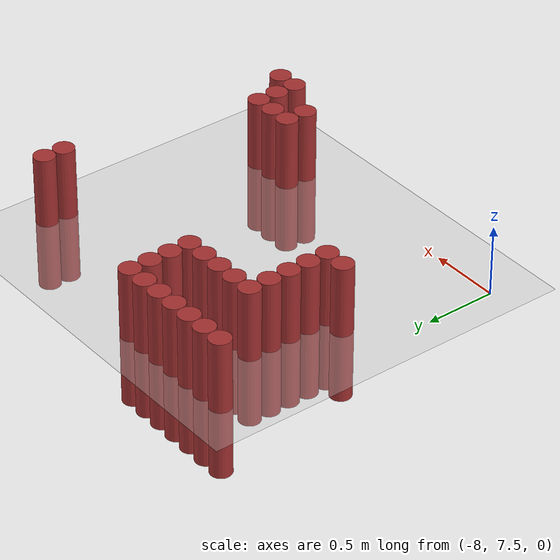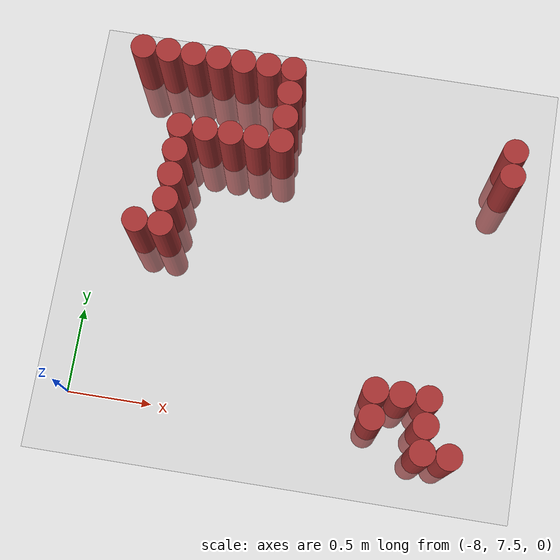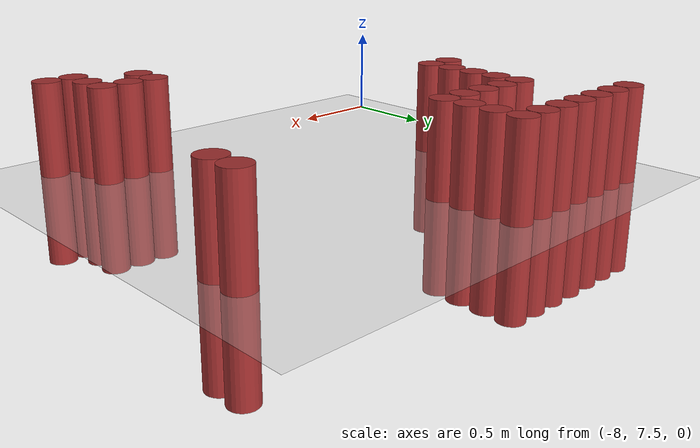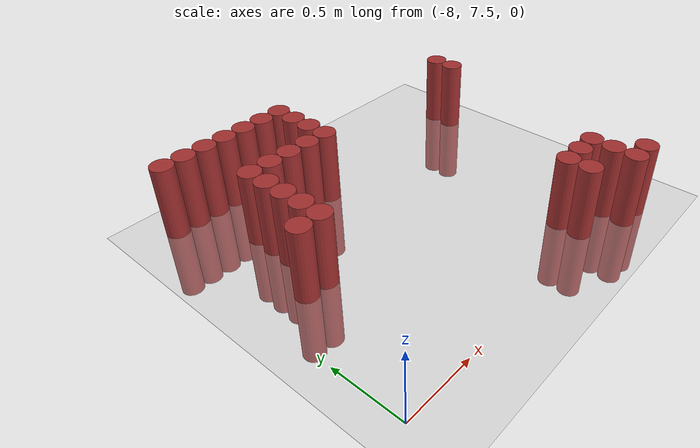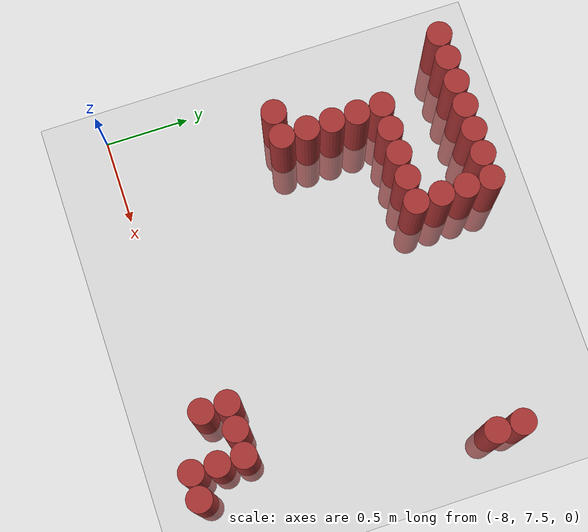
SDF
<sdf version="1.6">
 <world name="default">
  <model name="ground_plane">
   <static>1</static>
   <link name="link">
    <collision name="collision">
     <geometry><plane><normal>0 0 1</normal><size>100 100</size></plane></geometry>
     <surface><friction><ode><mu>100</mu><mu2>50</mu2></ode></friction></surface>
    </collision>
    <visual name="visual">
     <cast_shadows>0</cast_shadows>
     <geometry><plane><normal>0 0 1</normal><size>100 100</size></plane></geometry>
     <material>
      <script><uri>file://media/materials/scripts/gazebo.material</uri><name>Gazebo/Grey</name></script>
     </material>
    </visual>
   </link>
  </model>
  <model name="unit_cylinder_189">
   <static>1</static>
   <pose>-7.875000 9.525000 0.000000 0.000000 0.000000 0.000000</pose>
   <link name="link">
    <inertial>
     <mass>1</mass>
     <inertia><ixx>0.145833</ixx><ixy>0</ixy><ixz>0</ixz><iyy>0.145833</iyy><iyz>0</iyz><izz>0.125</izz></inertia>
    </inertial>
    <collision name="collision">
     <geometry><cylinder><radius>0.075000</radius><length>1</length></cylinder></geometry>
    </collision>
    <visual name="visual">
     <geometry><cylinder><radius>0.075000</radius><length>1</length></cylinder></geometry>
     <material>
      <ambient>0.648000 0.192000 0.192000 1</ambient>
      <diffuse>0.648000 0.192000 0.192000 1</diffuse>
     </material>
     <material>
      <script><name>Gazebo/Grey</name><uri>file://media/materials/scripts/gazebo.material</uri></script>
     </material>
    </visual>
   </link>
  </model>
  <model name="unit_cylinder_192">
   <static>1</static>
   <pose>-7.725000 8.475000 0.000000 0.000000 0.000000 0.000000</pose>
   <link name="link">
    <inertial>
     <mass>1</mass>
     <inertia><ixx>0.145833</ixx><ixy>0</ixy><ixz>0</ixz><iyy>0.145833</iyy><iyz>0</iyz><izz>0.125</izz></inertia>
    </inertial>
    <collision name="collision">
     <geometry><cylinder><radius>0.075000</radius><length>1</length></cylinder></geometry>
    </collision>
    <visual name="visual">
     <geometry><cylinder><radius>0.075000</radius><length>1</length></cylinder></geometry>
     <material>
      <ambient>0.648000 0.192000 0.192000 1</ambient>
      <diffuse>0.648000 0.192000 0.192000 1</diffuse>
     </material>
     <material>
      <script><name>Gazebo/Grey</name><uri>file://media/materials/scripts/gazebo.material</uri></script>
     </material>
    </visual>
   </link>
  </model>
  <model name="unit_cylinder_193">
   <static>1</static>
   <pose>-7.725000 9.525000 0.000000 0.000000 0.000000 0.000000</pose>
   <link name="link">
    <inertial>
     <mass>1</mass>
     <inertia><ixx>0.145833</ixx><ixy>0</ixy><ixz>0</ixz><iyy>0.145833</iyy><iyz>0</iyz><izz>0.125</izz></inertia>
    </inertial>
    <collision name="collision">
     <geometry><cylinder><radius>0.075000</radius><length>1</length></cylinder></geometry>
    </collision>
    <visual name="visual">
     <geometry><cylinder><radius>0.075000</radius><length>1</length></cylinder></geometry>
     <material>
      <ambient>0.648000 0.192000 0.192000 1</ambient>
      <diffuse>0.648000 0.192000 0.192000 1</diffuse>
     </material>
     <material>
      <script><name>Gazebo/Grey</name><uri>file://media/materials/scripts/gazebo.material</uri></script>
     </material>
    </visual>
   </link>
  </model>
  <model name="unit_cylinder_197">
   <static>1</static>
   <pose>-7.575000 8.475000 0.000000 0.000000 0.000000 0.000000</pose>
   <link name="link">
    <inertial>
     <mass>1</mass>
     <inertia><ixx>0.145833</ixx><ixy>0</ixy><ixz>0</ixz><iyy>0.145833</iyy><iyz>0</iyz><izz>0.125</izz></inertia>
    </inertial>
    <collision name="collision">
     <geometry><cylinder><radius>0.075000</radius><length>1</length></cylinder></geometry>
    </collision>
    <visual name="visual">
     <geometry><cylinder><radius>0.075000</radius><length>1</length></cylinder></geometry>
     <material>
      <ambient>0.648000 0.192000 0.192000 1</ambient>
      <diffuse>0.648000 0.192000 0.192000 1</diffuse>
     </material>
     <material>
      <script><name>Gazebo/Grey</name><uri>file://media/materials/scripts/gazebo.material</uri></script>
     </material>
    </visual>
   </link>
  </model>
  <model name="unit_cylinder_198">
   <static>1</static>
   <pose>-7.575000 8.625000 0.000000 0.000000 0.000000 0.000000</pose>
   <link name="link">
    <inertial>
     <mass>1</mass>
     <inertia><ixx>0.145833</ixx><ixy>0</ixy><ixz>0</ixz><iyy>0.145833</iyy><iyz>0</iyz><izz>0.125</izz></inertia>
    </inertial>
    <collision name="collision">
     <geometry><cylinder><radius>0.075000</radius><length>1</length></cylinder></geometry>
    </collision>
    <visual name="visual">
     <geometry><cylinder><radius>0.075000</radius><length>1</length></cylinder></geometry>
     <material>
      <ambient>0.648000 0.192000 0.192000 1</ambient>
      <diffuse>0.648000 0.192000 0.192000 1</diffuse>
     </material>
     <material>
      <script><name>Gazebo/Grey</name><uri>file://media/materials/scripts/gazebo.material</uri></script>
     </material>
    </visual>
   </link>
  </model>
  <model name="unit_cylinder_199">
   <static>1</static>
   <pose>-7.575000 8.775000 0.000000 0.000000 0.000000 0.000000</pose>
   <link name="link">
    <inertial>
     <mass>1</mass>
     <inertia><ixx>0.145833</ixx><ixy>0</ixy><ixz>0</ixz><iyy>0.145833</iyy><iyz>0</iyz><izz>0.125</izz></inertia>
    </inertial>
    <collision name="collision">
     <geometry><cylinder><radius>0.075000</radius><length>1</length></cylinder></geometry>
    </collision>
    <visual name="visual">
     <geometry><cylinder><radius>0.075000</radius><length>1</length></cylinder></geometry>
     <material>
      <ambient>0.648000 0.192000 0.192000 1</ambient>
      <diffuse>0.648000 0.192000 0.192000 1</diffuse>
     </material>
     <material>
      <script><name>Gazebo/Grey</name><uri>file://media/materials/scripts/gazebo.material</uri></script>
     </material>
    </visual>
   </link>
  </model>
  <model name="unit_cylinder_200">
   <static>1</static>
   <pose>-7.575000 8.925000 0.000000 0.000000 0.000000 0.000000</pose>
   <link name="link">
    <inertial>
     <mass>1</mass>
     <inertia><ixx>0.145833</ixx><ixy>0</ixy><ixz>0</ixz><iyy>0.145833</iyy><iyz>0</iyz><izz>0.125</izz></inertia>
    </inertial>
    <collision name="collision">
     <geometry><cylinder><radius>0.075000</radius><length>1</length></cylinder></geometry>
    </collision>
    <visual name="visual">
     <geometry><cylinder><radius>0.075000</radius><length>1</length></cylinder></geometry>
     <material>
      <ambient>0.648000 0.192000 0.192000 1</ambient>
      <diffuse>0.648000 0.192000 0.192000 1</diffuse>
     </material>
     <material>
      <script><name>Gazebo/Grey</name><uri>file://media/materials/scripts/gazebo.material</uri></script>
     </material>
    </visual>
   </link>
  </model>
  <model name="unit_cylinder_201">
   <static>1</static>
   <pose>-7.575000 9.075000 0.000000 0.000000 0.000000 0.000000</pose>
   <link name="link">
    <inertial>
     <mass>1</mass>
     <inertia><ixx>0.145833</ixx><ixy>0</ixy><ixz>0</ixz><iyy>0.145833</iyy><iyz>0</iyz><izz>0.125</izz></inertia>
    </inertial>
    <collision name="collision">
     <geometry><cylinder><radius>0.075000</radius><length>1</length></cylinder></geometry>
    </collision>
    <visual name="visual">
     <geometry><cylinder><radius>0.075000</radius><length>1</length></cylinder></geometry>
     <material>
      <ambient>0.648000 0.192000 0.192000 1</ambient>
      <diffuse>0.648000 0.192000 0.192000 1</diffuse>
     </material>
     <material>
      <script><name>Gazebo/Grey</name><uri>file://media/materials/scripts/gazebo.material</uri></script>
     </material>
    </visual>
   </link>
  </model>
  <model name="unit_cylinder_202">
   <static>1</static>
   <pose>-7.575000 9.525000 0.000000 0.000000 0.000000 0.000000</pose>
   <link name="link">
    <inertial>
     <mass>1</mass>
     <inertia><ixx>0.145833</ixx><ixy>0</ixy><ixz>0</ixz><iyy>0.145833</iyy><iyz>0</iyz><izz>0.125</izz></inertia>
    </inertial>
    <collision name="collision">
     <geometry><cylinder><radius>0.075000</radius><length>1</length></cylinder></geometry>
    </collision>
    <visual name="visual">
     <geometry><cylinder><radius>0.075000</radius><length>1</length></cylinder></geometry>
     <material>
      <ambient>0.648000 0.192000 0.192000 1</ambient>
      <diffuse>0.648000 0.192000 0.192000 1</diffuse>
     </material>
     <material>
      <script><name>Gazebo/Grey</name><uri>file://media/materials/scripts/gazebo.material</uri></script>
     </material>
    </visual>
   </link>
  </model>
  <model name="unit_cylinder_203">
   <static>1</static>
   <pose>-7.425000 9.075000 0.000000 0.000000 0.000000 0.000000</pose>
   <link name="link">
    <inertial>
     <mass>1</mass>
     <inertia><ixx>0.145833</ixx><ixy>0</ixy><ixz>0</ixz><iyy>0.145833</iyy><iyz>0</iyz><izz>0.125</izz></inertia>
    </inertial>
    <collision name="collision">
     <geometry><cylinder><radius>0.075000</radius><length>1</length></cylinder></geometry>
    </collision>
    <visual name="visual">
     <geometry><cylinder><radius>0.075000</radius><length>1</length></cylinder></geometry>
     <material>
      <ambient>0.648000 0.192000 0.192000 1</ambient>
      <diffuse>0.648000 0.192000 0.192000 1</diffuse>
     </material>
     <material>
      <script><name>Gazebo/Grey</name><uri>file://media/materials/scripts/gazebo.material</uri></script>
     </material>
    </visual>
   </link>
  </model>
  <model name="unit_cylinder_204">
   <static>1</static>
   <pose>-7.425000 9.525000 0.000000 0.000000 0.000000 0.000000</pose>
   <link name="link">
    <inertial>
     <mass>1</mass>
     <inertia><ixx>0.145833</ixx><ixy>0</ixy><ixz>0</ixz><iyy>0.145833</iyy><iyz>0</iyz><izz>0.125</izz></inertia>
    </inertial>
    <collision name="collision">
     <geometry><cylinder><radius>0.075000</radius><length>1</length></cylinder></geometry>
    </collision>
    <visual name="visual">
     <geometry><cylinder><radius>0.075000</radius><length>1</length></cylinder></geometry>
     <material>
      <ambient>0.648000 0.192000 0.192000 1</ambient>
      <diffuse>0.648000 0.192000 0.192000 1</diffuse>
     </material>
     <material>
      <script><name>Gazebo/Grey</name><uri>file://media/materials/scripts/gazebo.material</uri></script>
     </material>
    </visual>
   </link>
  </model>
  <model name="unit_cylinder_205">
   <static>1</static>
   <pose>-7.275000 9.075000 0.000000 0.000000 0.000000 0.000000</pose>
   <link name="link">
    <inertial>
     <mass>1</mass>
     <inertia><ixx>0.145833</ixx><ixy>0</ixy><ixz>0</ixz><iyy>0.145833</iyy><iyz>0</iyz><izz>0.125</izz></inertia>
    </inertial>
    <collision name="collision">
     <geometry><cylinder><radius>0.075000</radius><length>1</length></cylinder></geometry>
    </collision>
    <visual name="visual">
     <geometry><cylinder><radius>0.075000</radius><length>1</length></cylinder></geometry>
     <material>
      <ambient>0.648000 0.192000 0.192000 1</ambient>
      <diffuse>0.648000 0.192000 0.192000 1</diffuse>
     </material>
     <material>
      <script><name>Gazebo/Grey</name><uri>file://media/materials/scripts/gazebo.material</uri></script>
     </material>
    </visual>
   </link>
  </model>
  <model name="unit_cylinder_206">
   <static>1</static>
   <pose>-7.275000 9.525000 0.000000 0.000000 0.000000 0.000000</pose>
   <link name="link">
    <inertial>
     <mass>1</mass>
     <inertia><ixx>0.145833</ixx><ixy>0</ixy><ixz>0</ixz><iyy>0.145833</iyy><iyz>0</iyz><izz>0.125</izz></inertia>
    </inertial>
    <collision name="collision">
     <geometry><cylinder><radius>0.075000</radius><length>1</length></cylinder></geometry>
    </collision>
    <visual name="visual">
     <geometry><cylinder><radius>0.075000</radius><length>1</length></cylinder></geometry>
     <material>
      <ambient>0.648000 0.192000 0.192000 1</ambient>
      <diffuse>0.648000 0.192000 0.192000 1</diffuse>
     </material>
     <material>
      <script><name>Gazebo/Grey</name><uri>file://media/materials/scripts/gazebo.material</uri></script>
     </material>
    </visual>
   </link>
  </model>
  <model name="unit_cylinder_207">
   <static>1</static>
   <pose>-7.125000 9.075000 0.000000 0.000000 0.000000 0.000000</pose>
   <link name="link">
    <inertial>
     <mass>1</mass>
     <inertia><ixx>0.145833</ixx><ixy>0</ixy><ixz>0</ixz><iyy>0.145833</iyy><iyz>0</iyz><izz>0.125</izz></inertia>
    </inertial>
    <collision name="collision">
     <geometry><cylinder><radius>0.075000</radius><length>1</length></cylinder></geometry>
    </collision>
    <visual name="visual">
     <geometry><cylinder><radius>0.075000</radius><length>1</length></cylinder></geometry>
     <material>
      <ambient>0.648000 0.192000 0.192000 1</ambient>
      <diffuse>0.648000 0.192000 0.192000 1</diffuse>
     </material>
     <material>
      <script><name>Gazebo/Grey</name><uri>file://media/materials/scripts/gazebo.material</uri></script>
     </material>
    </visual>
   </link>
  </model>
  <model name="unit_cylinder_208">
   <static>1</static>
   <pose>-7.125000 9.525000 0.000000 0.000000 0.000000 0.000000</pose>
   <link name="link">
    <inertial>
     <mass>1</mass>
     <inertia><ixx>0.145833</ixx><ixy>0</ixy><ixz>0</ixz><iyy>0.145833</iyy><iyz>0</iyz><izz>0.125</izz></inertia>
    </inertial>
    <collision name="collision">
     <geometry><cylinder><radius>0.075000</radius><length>1</length></cylinder></geometry>
    </collision>
    <visual name="visual">
     <geometry><cylinder><radius>0.075000</radius><length>1</length></cylinder></geometry>
     <material>
      <ambient>0.648000 0.192000 0.192000 1</ambient>
      <diffuse>0.648000 0.192000 0.192000 1</diffuse>
     </material>
     <material>
      <script><name>Gazebo/Grey</name><uri>file://media/materials/scripts/gazebo.material</uri></script>
     </material>
    </visual>
   </link>
  </model>
  <model name="unit_cylinder_209">
   <static>1</static>
   <pose>-6.975000 9.075000 0.000000 0.000000 0.000000 0.000000</pose>
   <link name="link">
    <inertial>
     <mass>1</mass>
     <inertia><ixx>0.145833</ixx><ixy>0</ixy><ixz>0</ixz><iyy>0.145833</iyy><iyz>0</iyz><izz>0.125</izz></inertia>
    </inertial>
    <collision name="collision">
     <geometry><cylinder><radius>0.075000</radius><length>1</length></cylinder></geometry>
    </collision>
    <visual name="visual">
     <geometry><cylinder><radius>0.075000</radius><length>1</length></cylinder></geometry>
     <material>
      <ambient>0.648000 0.192000 0.192000 1</ambient>
      <diffuse>0.648000 0.192000 0.192000 1</diffuse>
     </material>
     <material>
      <script><name>Gazebo/Grey</name><uri>file://media/materials/scripts/gazebo.material</uri></script>
     </material>
    </visual>
   </link>
  </model>
  <model name="unit_cylinder_210">
   <static>1</static>
   <pose>-6.975000 9.225000 0.000000 0.000000 0.000000 0.000000</pose>
   <link name="link">
    <inertial>
     <mass>1</mass>
     <inertia><ixx>0.145833</ixx><ixy>0</ixy><ixz>0</ixz><iyy>0.145833</iyy><iyz>0</iyz><izz>0.125</izz></inertia>
    </inertial>
    <collision name="collision">
     <geometry><cylinder><radius>0.075000</radius><length>1</length></cylinder></geometry>
    </collision>
    <visual name="visual">
     <geometry><cylinder><radius>0.075000</radius><length>1</length></cylinder></geometry>
     <material>
      <ambient>0.648000 0.192000 0.192000 1</ambient>
      <diffuse>0.648000 0.192000 0.192000 1</diffuse>
     </material>
     <material>
      <script><name>Gazebo/Grey</name><uri>file://media/materials/scripts/gazebo.material</uri></script>
     </material>
    </visual>
   </link>
  </model>
  <model name="unit_cylinder_211">
   <static>1</static>
   <pose>-6.975000 9.375000 0.000000 0.000000 0.000000 0.000000</pose>
   <link name="link">
    <inertial>
     <mass>1</mass>
     <inertia><ixx>0.145833</ixx><ixy>0</ixy><ixz>0</ixz><iyy>0.145833</iyy><iyz>0</iyz><izz>0.125</izz></inertia>
    </inertial>
    <collision name="collision">
     <geometry><cylinder><radius>0.075000</radius><length>1</length></cylinder></geometry>
    </collision>
    <visual name="visual">
     <geometry><cylinder><radius>0.075000</radius><length>1</length></cylinder></geometry>
     <material>
      <ambient>0.648000 0.192000 0.192000 1</ambient>
      <diffuse>0.648000 0.192000 0.192000 1</diffuse>
     </material>
     <material>
      <script><name>Gazebo/Grey</name><uri>file://media/materials/scripts/gazebo.material</uri></script>
     </material>
    </visual>
   </link>
  </model>
  <model name="unit_cylinder_212">
   <static>1</static>
   <pose>-6.975000 9.525000 0.000000 0.000000 0.000000 0.000000</pose>
   <link name="link">
    <inertial>
     <mass>1</mass>
     <inertia><ixx>0.145833</ixx><ixy>0</ixy><ixz>0</ixz><iyy>0.145833</iyy><iyz>0</iyz><izz>0.125</izz></inertia>
    </inertial>
    <collision name="collision">
     <geometry><cylinder><radius>0.075000</radius><length>1</length></cylinder></geometry>
    </collision>
    <visual name="visual">
     <geometry><cylinder><radius>0.075000</radius><length>1</length></cylinder></geometry>
     <material>
      <ambient>0.648000 0.192000 0.192000 1</ambient>
      <diffuse>0.648000 0.192000 0.192000 1</diffuse>
     </material>
     <material>
      <script><name>Gazebo/Grey</name><uri>file://media/materials/scripts/gazebo.material</uri></script>
     </material>
    </visual>
   </link>
  </model>
  <model name="unit_cylinder_224">
   <static>1</static>
   <pose>-6.225000 7.575000 0.000000 0.000000 0.000000 0.000000</pose>
   <link name="link">
    <inertial>
     <mass>1</mass>
     <inertia><ixx>0.145833</ixx><ixy>0</ixy><ixz>0</ixz><iyy>0.145833</iyy><iyz>0</iyz><izz>0.125</izz></inertia>
    </inertial>
    <collision name="collision">
     <geometry><cylinder><radius>0.075000</radius><length>1</length></cylinder></geometry>
    </collision>
    <visual name="visual">
     <geometry><cylinder><radius>0.075000</radius><length>1</length></cylinder></geometry>
     <material>
      <ambient>0.648000 0.192000 0.192000 1</ambient>
      <diffuse>0.648000 0.192000 0.192000 1</diffuse>
     </material>
     <material>
      <script><name>Gazebo/Grey</name><uri>file://media/materials/scripts/gazebo.material</uri></script>
     </material>
    </visual>
   </link>
  </model>
  <model name="unit_cylinder_225">
   <static>1</static>
   <pose>-6.225000 7.725000 0.000000 0.000000 0.000000 0.000000</pose>
   <link name="link">
    <inertial>
     <mass>1</mass>
     <inertia><ixx>0.145833</ixx><ixy>0</ixy><ixz>0</ixz><iyy>0.145833</iyy><iyz>0</iyz><izz>0.125</izz></inertia>
    </inertial>
    <collision name="collision">
     <geometry><cylinder><radius>0.075000</radius><length>1</length></cylinder></geometry>
    </collision>
    <visual name="visual">
     <geometry><cylinder><radius>0.075000</radius><length>1</length></cylinder></geometry>
     <material>
      <ambient>0.648000 0.192000 0.192000 1</ambient>
      <diffuse>0.648000 0.192000 0.192000 1</diffuse>
     </material>
     <material>
      <script><name>Gazebo/Grey</name><uri>file://media/materials/scripts/gazebo.material</uri></script>
     </material>
    </visual>
   </link>
  </model>
  <model name="unit_cylinder_232">
   <static>1</static>
   <pose>-6.075000 7.725000 0.000000 0.000000 0.000000 0.000000</pose>
   <link name="link">
    <inertial>
     <mass>1</mass>
     <inertia><ixx>0.145833</ixx><ixy>0</ixy><ixz>0</ixz><iyy>0.145833</iyy><iyz>0</iyz><izz>0.125</izz></inertia>
    </inertial>
    <collision name="collision">
     <geometry><cylinder><radius>0.075000</radius><length>1</length></cylinder></geometry>
    </collision>
    <visual name="visual">
     <geometry><cylinder><radius>0.075000</radius><length>1</length></cylinder></geometry>
     <material>
      <ambient>0.648000 0.192000 0.192000 1</ambient>
      <diffuse>0.648000 0.192000 0.192000 1</diffuse>
     </material>
     <material>
      <script><name>Gazebo/Grey</name><uri>file://media/materials/scripts/gazebo.material</uri></script>
     </material>
    </visual>
   </link>
  </model>
  <model name="unit_cylinder_239">
   <static>1</static>
   <pose>-5.925000 7.425000 0.000000 0.000000 0.000000 0.000000</pose>
   <link name="link">
    <inertial>
     <mass>1</mass>
     <inertia><ixx>0.145833</ixx><ixy>0</ixy><ixz>0</ixz><iyy>0.145833</iyy><iyz>0</iyz><izz>0.125</izz></inertia>
    </inertial>
    <collision name="collision">
     <geometry><cylinder><radius>0.075000</radius><length>1</length></cylinder></geometry>
    </collision>
    <visual name="visual">
     <geometry><cylinder><radius>0.075000</radius><length>1</length></cylinder></geometry>
     <material>
      <ambient>0.648000 0.192000 0.192000 1</ambient>
      <diffuse>0.648000 0.192000 0.192000 1</diffuse>
     </material>
     <material>
      <script><name>Gazebo/Grey</name><uri>file://media/materials/scripts/gazebo.material</uri></script>
     </material>
    </visual>
   </link>
  </model>
  <model name="unit_cylinder_240">
   <static>1</static>
   <pose>-5.925000 7.575000 0.000000 0.000000 0.000000 0.000000</pose>
   <link name="link">
    <inertial>
     <mass>1</mass>
     <inertia><ixx>0.145833</ixx><ixy>0</ixy><ixz>0</ixz><iyy>0.145833</iyy><iyz>0</iyz><izz>0.125</izz></inertia>
    </inertial>
    <collision name="collision">
     <geometry><cylinder><radius>0.075000</radius><length>1</length></cylinder></geometry>
    </collision>
    <visual name="visual">
     <geometry><cylinder><radius>0.075000</radius><length>1</length></cylinder></geometry>
     <material>
      <ambient>0.648000 0.192000 0.192000 1</ambient>
      <diffuse>0.648000 0.192000 0.192000 1</diffuse>
     </material>
     <material>
      <script><name>Gazebo/Grey</name><uri>file://media/materials/scripts/gazebo.material</uri></script>
     </material>
    </visual>
   </link>
  </model>
  <model name="unit_cylinder_241">
   <static>1</static>
   <pose>-5.925000 7.725000 0.000000 0.000000 0.000000 0.000000</pose>
   <link name="link">
    <inertial>
     <mass>1</mass>
     <inertia><ixx>0.145833</ixx><ixy>0</ixy><ixz>0</ixz><iyy>0.145833</iyy><iyz>0</iyz><izz>0.125</izz></inertia>
    </inertial>
    <collision name="collision">
     <geometry><cylinder><radius>0.075000</radius><length>1</length></cylinder></geometry>
    </collision>
    <visual name="visual">
     <geometry><cylinder><radius>0.075000</radius><length>1</length></cylinder></geometry>
     <material>
      <ambient>0.648000 0.192000 0.192000 1</ambient>
      <diffuse>0.648000 0.192000 0.192000 1</diffuse>
     </material>
     <material>
      <script><name>Gazebo/Grey</name><uri>file://media/materials/scripts/gazebo.material</uri></script>
     </material>
    </visual>
   </link>
  </model>
  <model name="unit_cylinder_245">
   <static>1</static>
   <pose>-5.775000 7.425000 0.000000 0.000000 0.000000 0.000000</pose>
   <link name="link">
    <inertial>
     <mass>1</mass>
     <inertia><ixx>0.145833</ixx><ixy>0</ixy><ixz>0</ixz><iyy>0.145833</iyy><iyz>0</iyz><izz>0.125</izz></inertia>
    </inertial>
    <collision name="collision">
     <geometry><cylinder><radius>0.075000</radius><length>1</length></cylinder></geometry>
    </collision>
    <visual name="visual">
     <geometry><cylinder><radius>0.075000</radius><length>1</length></cylinder></geometry>
     <material>
      <ambient>0.648000 0.192000 0.192000 1</ambient>
      <diffuse>0.648000 0.192000 0.192000 1</diffuse>
     </material>
     <material>
      <script><name>Gazebo/Grey</name><uri>file://media/materials/scripts/gazebo.material</uri></script>
     </material>
    </visual>
   </link>
  </model>
  <model name="unit_cylinder_246">
   <static>1</static>
   <pose>-5.625000 9.075000 0.000000 0.000000 0.000000 0.000000</pose>
   <link name="link">
    <inertial>
     <mass>1</mass>
     <inertia><ixx>0.145833</ixx><ixy>0</ixy><ixz>0</ixz><iyy>0.145833</iyy><iyz>0</iyz><izz>0.125</izz></inertia>
    </inertial>
    <collision name="collision">
     <geometry><cylinder><radius>0.075000</radius><length>1</length></cylinder></geometry>
    </collision>
    <visual name="visual">
     <geometry><cylinder><radius>0.075000</radius><length>1</length></cylinder></geometry>
     <material>
      <ambient>0.648000 0.192000 0.192000 1</ambient>
      <diffuse>0.648000 0.192000 0.192000 1</diffuse>
     </material>
     <material>
      <script><name>Gazebo/Grey</name><uri>file://media/materials/scripts/gazebo.material</uri></script>
     </material>
    </visual>
   </link>
  </model>
  <model name="unit_cylinder_247">
   <static>1</static>
   <pose>-5.625000 9.225000 0.000000 0.000000 0.000000 0.000000</pose>
   <link name="link">
    <inertial>
     <mass>1</mass>
     <inertia><ixx>0.145833</ixx><ixy>0</ixy><ixz>0</ixz><iyy>0.145833</iyy><iyz>0</iyz><izz>0.125</izz></inertia>
    </inertial>
    <collision name="collision">
     <geometry><cylinder><radius>0.075000</radius><length>1</length></cylinder></geometry>
    </collision>
    <visual name="visual">
     <geometry><cylinder><radius>0.075000</radius><length>1</length></cylinder></geometry>
     <material>
      <ambient>0.648000 0.192000 0.192000 1</ambient>
      <diffuse>0.648000 0.192000 0.192000 1</diffuse>
     </material>
     <material>
      <script><name>Gazebo/Grey</name><uri>file://media/materials/scripts/gazebo.material</uri></script>
     </material>
    </visual>
   </link>
  </model>
 </world>
</sdf>
